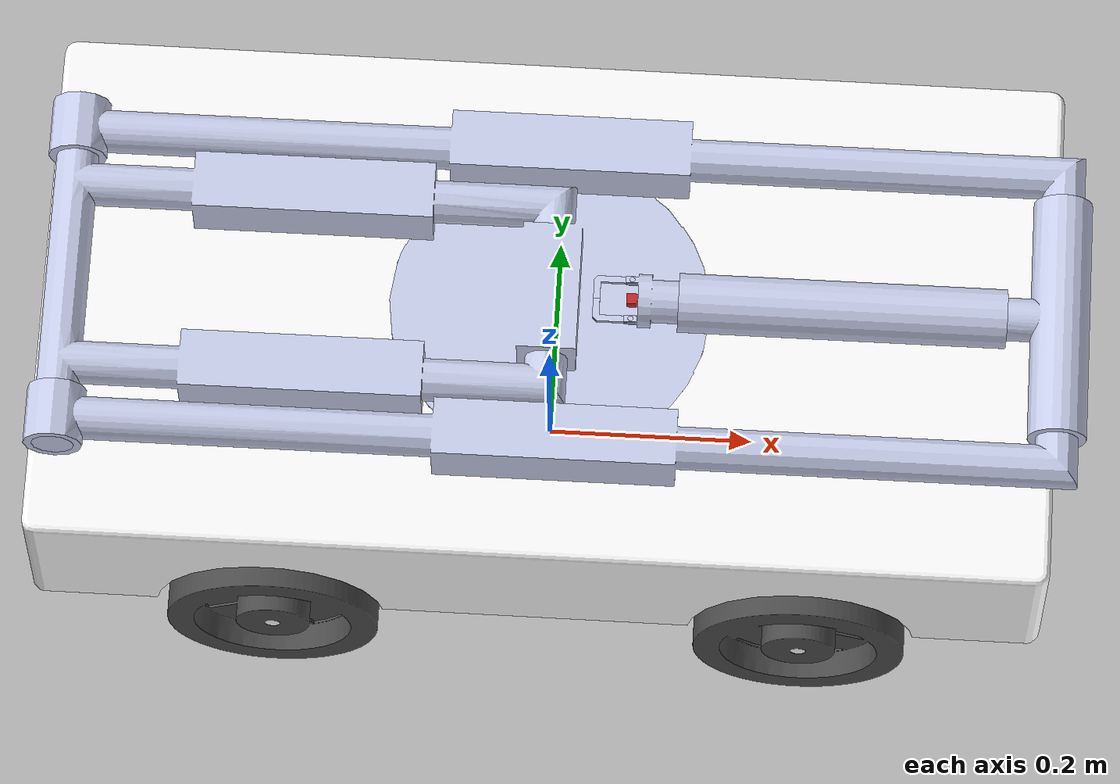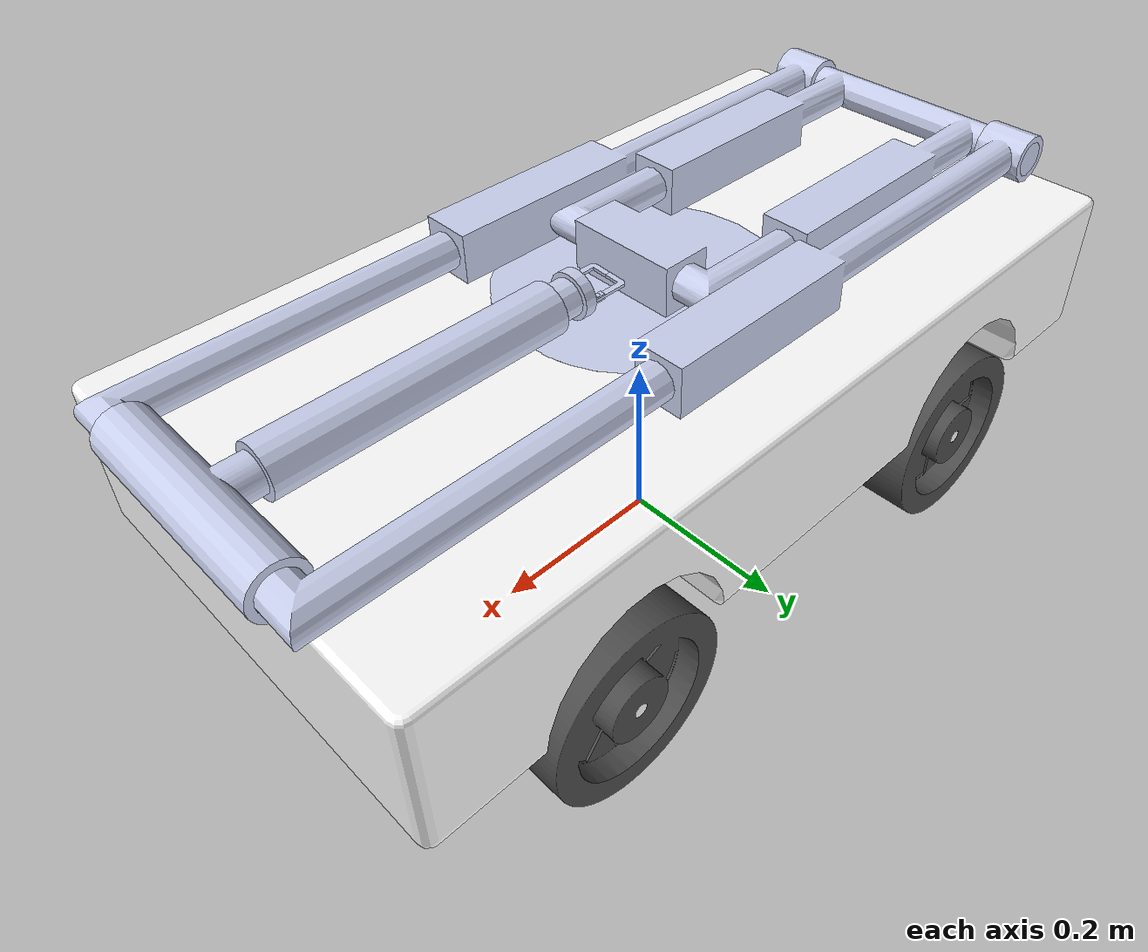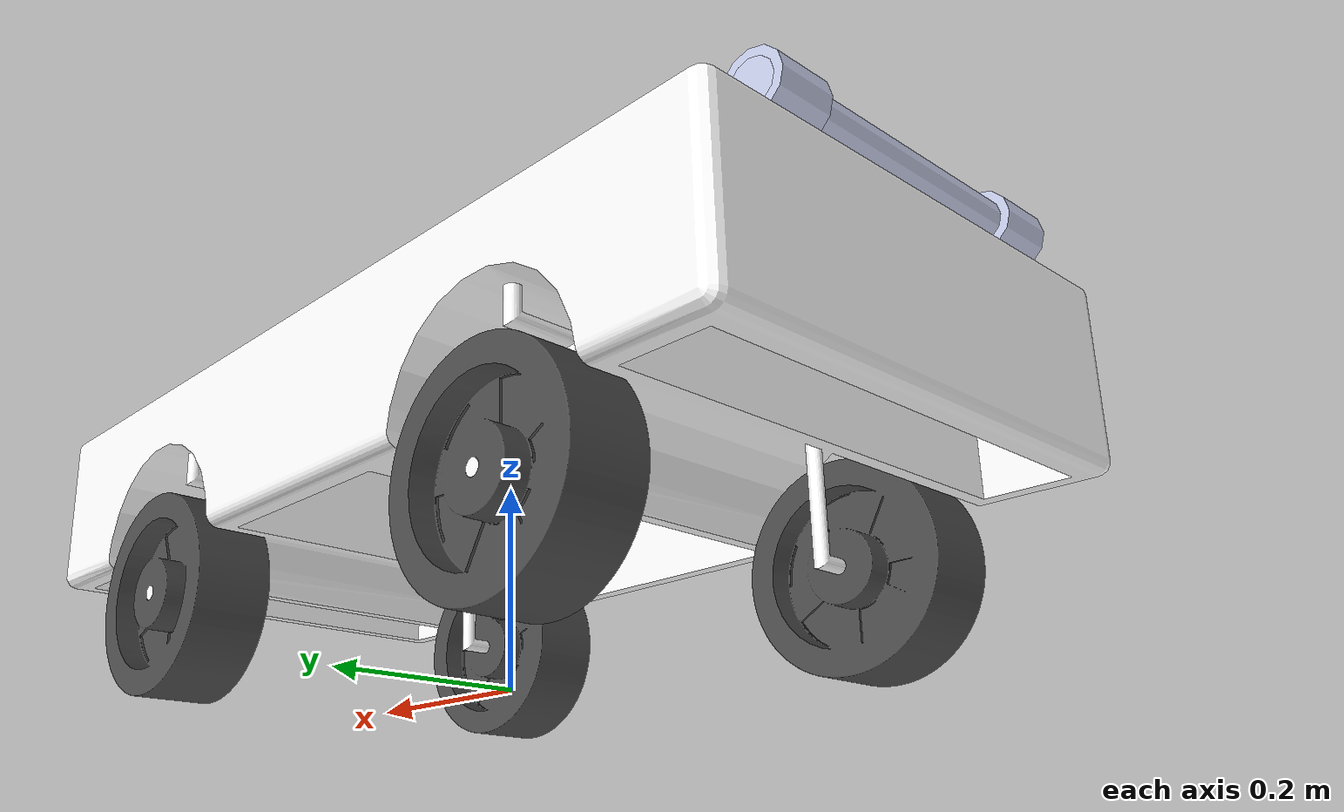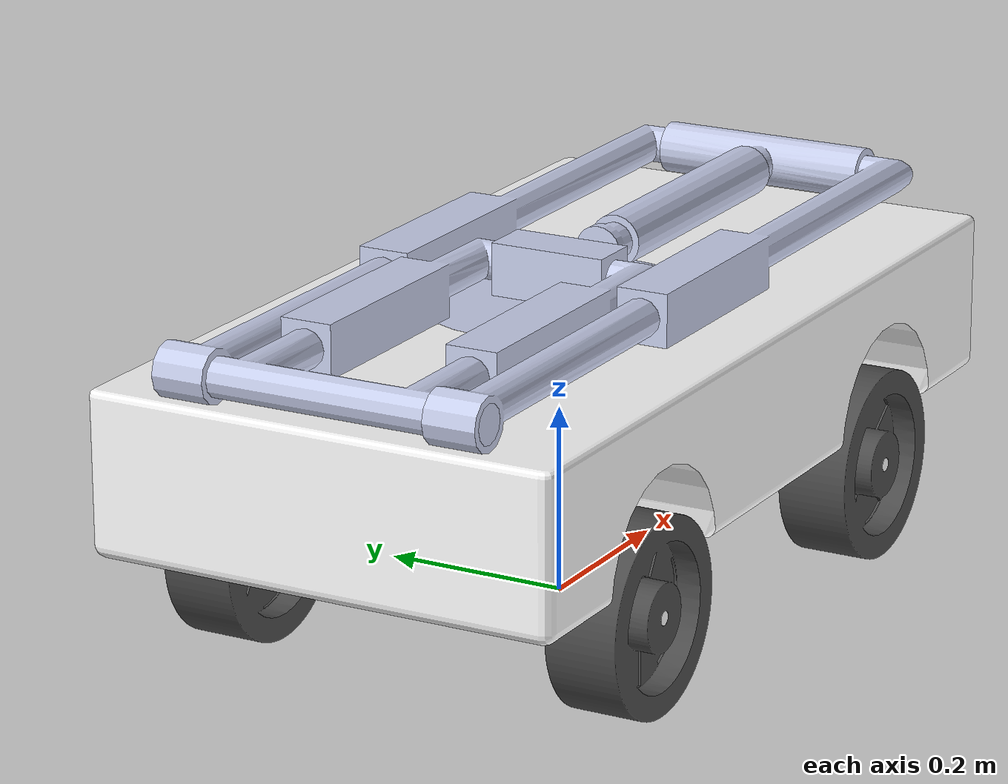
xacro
<?xml version="1.0"?>
<!-- Name your robot here -->
<robot name ="transformer" xmlns:xacro="http://wiki.ros.org/xacro">

<!-- Include your urdf files here -->
	<!-- Include Robot's urdf filepath -->
	<xacro:include filename="$(find transformer)/urdf/transformer.urdf" />
	<xacro:include filename="camera.xacro" />

<!-- Add your gazebo sensors here -->

<!--  Gazebo plugin for control here is already added for you -->
	<gazebo>
		<plugin name="gazebo_ros_control" filename="libgazebo_ros_control.so">
			<robotNamespace>/transformer</robotNamespace>
			<robotSimType>gazebo_ros_control/DefaultRobotHWSim</robotSimType>
			<legacyModeNS>true</legacyModeNS>
		</plugin>
	</gazebo>

</robot>

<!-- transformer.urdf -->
<robot
  name="toycar">
  <link
    name="dummy_link">
  </link>

  <joint
    name="dummy_joint"
    type="fixed">
    <parent
      link="dummy_link" />
    <child
      link="base_link" />
    <origin
      xyz="0 0 0"
      rpy="0 0 0" />
  </joint>

  <link
    name="base_link">
    <inertial>
      <origin
        xyz="-0.042877 1.1748E-08 0.29275"
        rpy="0 0 0" />
      <mass
        value="52.191" />
      <inertia
        ixx="1.4547"
        ixy="-1.4758E-06"
        ixz="0.13713"
        iyy="3.9353"
        iyz="1.4578E-08"
        izz="4.9977" />
    </inertial>
    <visual>
      <origin
        xyz="0 0 0"
        rpy="0 0 0" />
      <geometry>
        <mesh
          filename="package://toycar/meshes/base_link.STL" />
      </geometry>
      <material
        name="">
        <color
          rgba="1 1 1 1" />
      </material>
    </visual>
    <collision>
      <origin
        xyz="0 0 0"
        rpy="0 0 0" />
      <geometry>
        <mesh
          filename="package://toycar/meshes/base_link.STL" />
      </geometry>
    </collision>
  </link>
  <link
    name="FL_axle">
    <inertial>
      <origin
        xyz="-2.1389E-07 -0.033228 -0.10824"
        rpy="0 0 0" />
      <mass
        value="0.061704" />
      <inertia
        ixx="0.00028284"
        ixy="-3.6306E-10"
        ixz="-1.1782E-10"
        iyy="0.0002242"
        iyz="-4.3637E-06"
        izz="6.0365E-05" />
    </inertial>
    <visual>
      <origin
        xyz="0 0 0"
        rpy="0 0 0" />
      <geometry>
        <mesh
          filename="package://toycar/meshes/FL_axle.STL" />
      </geometry>
      <material
        name="">
        <color
          rgba="1 1 1 1" />
      </material>
    </visual>
    <collision>
      <origin
        xyz="0 0 0"
        rpy="0 0 0" />
      <geometry>
        <mesh
          filename="package://toycar/meshes/FL_axle.STL" />
      </geometry>
    </collision>
  </link>
  <joint
    name="FL_axle_chassis"
    type="revolute">
    <origin
      xyz="0.254 0.2159 0.2794"
      rpy="0 0 0" />
    <parent
      link="base_link" />
    <child
      link="FL_axle" />
    <axis
      xyz="0 0 1" />
    <limit
      lower="-0.698"
      upper="0.698"
      effort="30"
      velocity="100" />
  </joint>
  <transmission name="FL_axle_chassis_trans">
    <type>transmission_interface/SimpleTransmission</type>
    <joint name="FL_axle_chassis">
      <hardwareInterface>hardware_interface/EffortJointInterface</hardwareInterface>
    </joint>
    <actuator name="FL_axle_chassis_motor">
      <mechanicalReduction>1</mechanicalReduction>
      <hardwareInterface>hardware_interface/EffortJointInterface</hardwareInterface>
    </actuator>
  </transmission>
  <link
    name="FL_wheel">
    <inertial>
      <origin
        xyz="0 0 -0.0381"
        rpy="0 0 0" />
      <mass
        value="19.669" />
      <inertia
        ixx="0.0066187"
        ixy="-2.2273E-18"
        ixz="-7.5842E-19"
        iyy="0.0066187"
        iyz="-4.0053E-19"
        izz="0.011667" />
    </inertial>
    <visual>
      <origin
        xyz="0 0 0"
        rpy="0 0 0" />
      <geometry>
        <mesh
          filename="package://toycar/meshes/FL_wheel.STL" />
      </geometry>
      <material
        name="">
        <color
          rgba="0.29804 0.29804 0.29804 1" />
      </material>
    </visual>
    <collision>
      <origin
        xyz="0 0 0"
        rpy="0 0 0" />
      <geometry>
        <mesh
          filename="package://toycar/meshes/FL_wheel.STL" />
      </geometry>
    </collision>
  </link>
  <joint
    name="FL_wheel_axle"
    type="continuous">
    <origin
      xyz="0 0.0381 -0.1778"
      rpy="-1.5708 0 0" />
    <parent
      link="FL_axle" />
    <child
      link="FL_wheel" />
    <axis
      xyz="0 0 1" />
  </joint>
  <link
    name="FR_axle">
    <inertial>
      <origin
        xyz="2.1389E-07 0.033228 -0.10824"
        rpy="0 0 0" />
      <mass
        value="0.061704" />
      <inertia
        ixx="0.00028284"
        ixy="-3.6306E-10"
        ixz="1.1782E-10"
        iyy="0.0002242"
        iyz="4.3637E-06"
        izz="6.0365E-05" />
    </inertial>
    <visual>
      <origin
        xyz="0 0 0"
        rpy="0 0 0" />
      <geometry>
        <mesh
          filename="package://toycar/meshes/FR_axle.STL" />
      </geometry>
      <material
        name="">
        <color
          rgba="1 1 1 1" />
      </material>
    </visual>
    <collision>
      <origin
        xyz="0 0 0"
        rpy="0 0 0" />
      <geometry>
        <mesh
          filename="package://toycar/meshes/FR_axle.STL" />
      </geometry>
    </collision>
  </link>
  <joint
    name="FR_axle_chassis"
    type="revolute">
    <origin
      xyz="0.254 -0.2159 0.2794"
      rpy="0 0 0" />
    <parent
      link="base_link" />
    <child
      link="FR_axle" />
    <axis
      xyz="0 0 1" />
    <limit
      lower="-0.698"
      upper="0.698"
      effort="30"
      velocity="100" />
  </joint>
  <transmission name="FR_axle_chassis_trans">
    <type>transmission_interface/SimpleTransmission</type>
    <joint name="FR_axle_chassis">
      <hardwareInterface>hardware_interface/EffortJointInterface</hardwareInterface>
    </joint>
    <actuator name="FR_axle_chassis_motor">
      <mechanicalReduction>1</mechanicalReduction>
      <hardwareInterface>hardware_interface/EffortJointInterface</hardwareInterface>
    </actuator>
  </transmission>
  <link
    name="FR_wheel">
    <inertial>
      <origin
        xyz="0 -1.3878E-17 0.0381"
        rpy="0 0 0" />
      <mass
        value="19.669" />
      <inertia
        ixx="0.0066187"
        ixy="1.0816E-18"
        ixz="-4.9837E-19"
        iyy="0.0066187"
        iyz="-4.0009E-19"
        izz="0.011667" />
    </inertial>
    <visual>
      <origin
        xyz="0 0 0"
        rpy="0 0 0" />
      <geometry>
        <mesh
          filename="package://toycar/meshes/FR_wheel.STL" />
      </geometry>
      <material
        name="">
        <color
          rgba="0.29804 0.29804 0.29804 1" />
      </material>
    </visual>
    <collision>
      <origin
        xyz="0 0 0"
        rpy="0 0 0" />
      <geometry>
        <mesh
          filename="package://toycar/meshes/FR_wheel.STL" />
      </geometry>
    </collision>
  </link>
  <joint
    name="FR_wheel_axle"
    type="continuous">
    <origin
      xyz="0 -0.0381 -0.1778"
      rpy="-1.5708 0 0" />
    <parent
      link="FR_axle" />
    <child
      link="FR_wheel" />
    <axis
      xyz="0 0 1" />
  </joint>
  <link
    name="BR_axle">
    <inertial>
      <origin
        xyz="2.1389E-07 0.033228 -0.10824"
        rpy="0 0 0" />
      <mass
        value="0.061704" />
      <inertia
        ixx="0.00028284"
        ixy="-3.6306E-10"
        ixz="1.1782E-10"
        iyy="0.0002242"
        iyz="4.3637E-06"
        izz="6.0365E-05" />
    </inertial>
    <visual>
      <origin
        xyz="0 0 0"
        rpy="0 0 0" />
      <geometry>
        <mesh
          filename="package://toycar/meshes/BR_axle.STL" />
      </geometry>
      <material
        name="">
        <color
          rgba="1 1 1 1" />
      </material>
    </visual>
    <collision>
      <origin
        xyz="0 0 0"
        rpy="0 0 0" />
      <geometry>
        <mesh
          filename="package://toycar/meshes/BR_axle.STL" />
      </geometry>
    </collision>
  </link>
  <joint
    name="BR_axle_chassis"
    type="fixed">
    <origin
      xyz="-0.254 -0.2159 0.2794"
      rpy="0 0 0" />
    <parent
      link="base_link" />
    <child
      link="BR_axle" />
    <axis
      xyz="0 0 0" />
  </joint>
  <link
    name="BR_wheel">
    <inertial>
      <origin
        xyz="0 -1.3878E-17 0.0381"
        rpy="0 0 0" />
      <mass
        value="19.669" />
      <inertia
        ixx="0.0066187"
        ixy="-4.6602E-19"
        ixz="-3.6188E-20"
        iyy="0.0066187"
        iyz="-2.4546E-20"
        izz="0.011667" />
    </inertial>
    <visual>
      <origin
        xyz="0 0 0"
        rpy="0 0 0" />
      <geometry>
        <mesh
          filename="package://toycar/meshes/BR_wheel.STL" />
      </geometry>
      <material
        name="">
        <color
          rgba="0.29804 0.29804 0.29804 1" />
      </material>
    </visual>
    <collision>
      <origin
        xyz="0 0 0"
        rpy="0 0 0" />
      <geometry>
        <mesh
          filename="package://toycar/meshes/BR_wheel.STL" />
      </geometry>
    </collision>
  </link>
  <joint
    name="BR_wheel_axle"
    type="continuous">
    <origin
      xyz="0 -0.0381 -0.1778"
      rpy="-1.5708 0 0" />
    <parent
      link="BR_axle" />
    <child
      link="BR_wheel" />
    <axis
      xyz="0 0 1" />
  </joint>
  <transmission name="BR_wheel_axle_trans">
    <type>transmission_interface/SimpleTransmission</type>
    <joint name="BR_wheel_axle">
      <hardwareInterface>hardware_interface/VelocityJointInterface</hardwareInterface>
    </joint>
    <actuator name="BR_wheel_axle_motor">
      <mechanicalReduction>1</mechanicalReduction>
    </actuator>
  </transmission>
  <link
    name="BL_axle">
    <inertial>
      <origin
        xyz="-2.1389E-07 -0.033228 -0.10824"
        rpy="0 0 0" />
      <mass
        value="0.061704" />
      <inertia
        ixx="0.00028284"
        ixy="-3.6306E-10"
        ixz="-1.1782E-10"
        iyy="0.0002242"
        iyz="-4.3637E-06"
        izz="6.0365E-05" />
    </inertial>
    <visual>
      <origin
        xyz="0 0 0"
        rpy="0 0 0" />
      <geometry>
        <mesh
          filename="package://toycar/meshes/BL_axle.STL" />
      </geometry>
      <material
        name="">
        <color
          rgba="1 1 1 1" />
      </material>
    </visual>
    <collision>
      <origin
        xyz="0 0 0"
        rpy="0 0 0" />
      <geometry>
        <mesh
          filename="package://toycar/meshes/BL_axle.STL" />
      </geometry>
    </collision>
  </link>
  <joint
    name="BL_axle_chassis"
    type="fixed">
    <origin
      xyz="-0.254 0.2159 0.2794"
      rpy="0 0 0" />
    <parent
      link="base_link" />
    <child
      link="BL_axle" />
    <axis
      xyz="0 0 0" />
  </joint>
  <link
    name="BL_wheel">
    <inertial>
      <origin
        xyz="5.5511E-17 1.3878E-17 -0.0381"
        rpy="0 0 0" />
      <mass
        value="19.669" />
      <inertia
        ixx="0.0066187"
        ixy="4.4054E-19"
        ixz="-1.3271E-18"
        iyy="0.0066187"
        iyz="-6.6236E-19"
        izz="0.011667" />
    </inertial>
    <visual>
      <origin
        xyz="0 0 0"
        rpy="0 0 0" />
      <geometry>
        <mesh
          filename="package://toycar/meshes/BL_wheel.STL" />
      </geometry>
      <material
        name="">
        <color
          rgba="0.29804 0.29804 0.29804 1" />
      </material>
    </visual>
    <collision>
      <origin
        xyz="0 0 0"
        rpy="0 0 0" />
      <geometry>
        <mesh
          filename="package://toycar/meshes/BL_wheel.STL" />
      </geometry>
    </collision>
  </link>
  <joint
    name="BL_wheel_axle"
    type="continuous">
    <origin
      xyz="0 0.0381 -0.1778"
      rpy="-1.5708 0 0" />
    <parent
      link="BL_axle" />
    <child
      link="BL_wheel" />
    <axis
      xyz="0 0 1" />
  </joint>
  <transmission name="BL_wheel_axle_trans">
    <type>transmission_interface/SimpleTransmission</type>
    <joint name="BL_wheel_axle">
      <hardwareInterface>hardware_interface/VelocityJointInterface</hardwareInterface>
    </joint>
    <actuator name="BL_wheel_axle_motor">
      <mechanicalReduction>1</mechanicalReduction>
    </actuator>
  </transmission>
  <link
    name="mlr_link1">
    <inertial>
      <origin
        xyz="-3.4833E-15 -5.1625E-15 0.066013"
        rpy="0 0 0" />
      <mass
        value="0.021881" />
      <inertia
        ixx="0.011816"
        ixy="-1.1858E-20"
        ixz="-2.873E-19"
        iyy="0.011591"
        iyz="-2.3152E-19"
        izz="0.021954" />
    </inertial>
    <visual>
      <origin
        xyz="0 0 0"
        rpy="0 0 0" />
      <geometry>
        <mesh
          filename="package://transformer/meshes/mlr_link1.STL" />
      </geometry>
      <material
        name="">
        <color
          rgba="0.79216 0.81961 0.93333 1" />
      </material>
    </visual>
    <collision>
      <origin
        xyz="0 0 0"
        rpy="0 0 0" />
      <geometry>
        <mesh
          filename="package://transformer/meshes/mlr_link1.STL" />
      </geometry>
    </collision>
  </link>
  <joint
    name="link1_chassis"
    type="revolute">
    <origin
      xyz="0 0 0.24252"
      rpy="0 0 0.0025505" />
    <parent
      link="base_link" />
    <child
      link="mlr_link1" />
    <axis
      xyz="0 0 -1" />
    <limit
      lower="0"
      upper="6.283"
      effort="30"
      velocity="100" />
  </joint>
  <transmission name="link1_chassis_trans">
    <type>transmission_interface/SimpleTransmission</type>
    <joint name="link1_chassis">
      <hardwareInterface>hardware_interface/EffortJointInterface</hardwareInterface>
    </joint>
    <actuator name="link1_chassis_motor">
      <mechanicalReduction>1</mechanicalReduction>
      <hardwareInterface>hardware_interface/EffortJointInterface</hardwareInterface>
    </actuator>
  </transmission>
  <link
    name="mlr_link2">
    <inertial>
      <origin
        xyz="0.24339 -9.8435E-08 2.7091E-06"
        rpy="0 0 0" />
      <mass
        value="0.226679" />
      <inertia
        ixx="0.022841"
        ixy="8.6807E-08"
        ixz="1.271E-06"
        iyy="0.080308"
        iyz="2.3327E-08"
        izz="0.058468" />
    </inertial>
    <visual>
      <origin
        xyz="0 0 0"
        rpy="0 0 0" />
      <geometry>
        <mesh
          filename="package://transformer/meshes/mlr_link2.STL" />
      </geometry>
      <material
        name="">
        <color
          rgba="0.79216 0.81961 0.93333 1" />
      </material>
    </visual>
    <collision>
      <origin
        xyz="0 0 0"
        rpy="0 0 0" />
      <geometry>
        <mesh
          filename="package://transformer/meshes/mlr_link2.STL" />
      </geometry>
    </collision>
  </link>
  <joint
    name="link2_link1"
    type="revolute">
    <origin
      xyz="0 0 0.10414"
      rpy="1.5708 0 3.1416" />
    <parent
      link="mlr_link1" />
    <child
      link="mlr_link2" />
    <axis
      xyz="0 0 1" />
    <limit
      lower="0"
      upper="3.14"
      effort="300"
      velocity="100" />
  </joint>
  <transmission name="link2_link1_trans">
    <type>transmission_interface/SimpleTransmission</type>
    <joint name="link2_link1">
      <hardwareInterface>hardware_interface/EffortJointInterface</hardwareInterface>
    </joint>
    <actuator name="link2_link1_motor">
      <mechanicalReduction>1</mechanicalReduction>
      <hardwareInterface>hardware_interface/EffortJointInterface</hardwareInterface>
    </actuator>
  </transmission>
  <link
    name="mlr_link3">
    <inertial>
      <origin
        xyz="0.50997 0.0031101 -7.5244E-06"
        rpy="0 0 0" />
      <mass
        value="0.03717" />
      <inertia
        ixx="0.076483"
        ixy="8.4905E-08"
        ixz="9.2587E-06"
        iyy="0.35221"
        iyz="8.051E-09"
        izz="0.27699" />
    </inertial>
    <visual>
      <origin
        xyz="0 0 0"
        rpy="0 0 0" />
      <geometry>
        <mesh
          filename="package://transformer/meshes/mlr_link3.STL" />
      </geometry>
      <material
        name="">
        <color
          rgba="0.79216 0.81961 0.93333 1" />
      </material>
    </visual>
    <collision>
      <origin
        xyz="0 0 0"
        rpy="0 0 0" />
      <geometry>
        <mesh
          filename="package://transformer/meshes/mlr_link3.STL" />
      </geometry>
    </collision>
  </link>
  <joint
    name="link3_link2"
    type="revolute">
    <origin
      xyz="0.45688 -0.0031098 0"
      rpy="-3.1416 0 3.1416" />
    <parent
      link="mlr_link2" />
    <child
      link="mlr_link3" />
    <axis
      xyz="0 0 1" />
    <limit
      lower="0"
      upper="6.283"
      effort="300"
      velocity="100" />
  </joint>
  <transmission name="link3_link2_trans">
    <type>transmission_interface/SimpleTransmission</type>
    <joint name="link3_link2">
      <hardwareInterface>hardware_interface/EffortJointInterface</hardwareInterface>
    </joint>
    <actuator name="link3_link2_motor">
      <mechanicalReduction>1</mechanicalReduction>
      <hardwareInterface>hardware_interface/EffortJointInterface</hardwareInterface>
    </actuator>
  </transmission>
  <link
    name="mlr_link4">
    <inertial>
      <origin
        xyz="0.016727 6.741E-08 1.784E-08"
        rpy="0 0 0" />
      <mass
        value="0.037398" />
      <inertia
        ixx="0.0014131"
        ixy="-5.5962E-10"
        ixz="1.0584E-10"
        iyy="0.0017439"
        iyz="1.0599E-09"
        izz="0.00051617" />
    </inertial>
    <visual>
      <origin
        xyz="0 0 0"
        rpy="0 0 0" />
      <geometry>
        <mesh
          filename="package://transformer/meshes/mlr_link4.STL" />
      </geometry>
      <material
        name="">
        <color
          rgba="0.79216 0.81961 0.93333 1" />
      </material>
    </visual>
    <collision>
      <origin
        xyz="0 0 0"
        rpy="0 0 0" />
      <geometry>
        <mesh
          filename="package://transformer/meshes/mlr_link4.STL" />
      </geometry>
    </collision>
  </link>
  <joint
    name="link4_link3"
    type="revolute">
    <origin
      xyz="0.93948 0.0031098 0"
      rpy="-3.1416 0 3.1416" />
    <parent
      link="mlr_link3" />
    <child
      link="mlr_link4" />
    <axis
      xyz="0 0 1" />
    <limit
      lower="0"
      upper="6.283"
      effort="100"
      velocity="100" />
  </joint>
  <transmission name="link4_link3_trans">
    <type>transmission_interface/SimpleTransmission</type>
    <joint name="link4_link3">
      <hardwareInterface>hardware_interface/EffortJointInterface</hardwareInterface>
    </joint>
    <actuator name="link4_link3_motor">
      <mechanicalReduction>1</mechanicalReduction>
      <hardwareInterface>hardware_interface/EffortJointInterface</hardwareInterface>
    </actuator>
  </transmission>
  <link
    name="mlr_link5">
    <inertial>
      <origin
        xyz="-1.0445E-05 -0.00012914 0.2039"
        rpy="0 0 0" />
      <mass
        value="0.036459" />
      <inertia
        ixx="0.0030391"
        ixy="-2.7105E-20"
        ixz="-2.5269E-19"
        iyy="0.0030391"
        iyz="3.7635E-19"
        izz="0.00021501" />
    </inertial>
    <visual>
      <origin
        xyz="0 0 0"
        rpy="0 0 0" />
      <geometry>
        <mesh
          filename="package://transformer/meshes/mlr_link5.STL" />
      </geometry>
      <material
        name="">
        <color
          rgba="0.79216 0.81961 0.93333 1" />
      </material>
    </visual>
    <collision>
      <origin
        xyz="0 0 0"
        rpy="0 0 0" />
      <geometry>
        <mesh
          filename="package://transformer/meshes/mlr_link5.STL" />
      </geometry>
    </collision>
  </link>
  <joint
    name="link5_link4"
    type="revolute">
    <origin
      xyz="0 0 0.00012957"
      rpy="1.5708 -0.080704 1.5708" />
    <parent
      link="mlr_link4" />
    <child
      link="mlr_link5" />
    <axis
      xyz="0 0 1" />
    <limit
      lower="0"
      upper="6.283"
      effort="30"
      velocity="100" />
  </joint>
  <transmission name="link5_link4_trans">
    <type>transmission_interface/SimpleTransmission</type>
    <joint name="link5_link4">
      <hardwareInterface>hardware_interface/EffortJointInterface</hardwareInterface>
    </joint>
    <actuator name="link5_link4_motor">
      <mechanicalReduction>1</mechanicalReduction>
      <hardwareInterface>hardware_interface/EffortJointInterface</hardwareInterface>
    </actuator>
  </transmission>
  <link
    name="mlr_link6">
    <inertial>
      <origin
        xyz="2.2204E-16 2.9143E-16 0.15461"
        rpy="0 0 0" />
      <mass
        value="0.038855" />
      <inertia
        ixx="0.002921"
        ixy="1.2038E-08"
        ixz="6.3631E-19"
        iyy="0.0029208"
        iyz="-3.5832E-19"
        izz="8.329E-05" />
    </inertial>
    <visual>
      <origin
        xyz="0 0 0"
        rpy="0 0 0" />
      <geometry>
        <mesh
          filename="package://transformer/meshes/mlr_link6.STL" />
      </geometry>
      <material
        name="">
        <color
          rgba="0.79216 0.81961 0.93333 1" />
      </material>
    </visual>
    <collision>
      <origin
        xyz="0 0 0"
        rpy="0 0 0" />
      <geometry>
        <mesh
          filename="package://transformer/meshes/mlr_link6.STL" />
      </geometry>
    </collision>
  </link>
  <joint
    name="link6_link5"
    type="prismatic">
    <origin
      xyz="-1.0445E-05 -0.00012914 0.1016"
      rpy="0 0 3.0214" />
    <parent
      link="mlr_link5" />
    <child
      link="mlr_link6" />
    <axis
      xyz="0 0 1" />
    <limit
      lower="0"
      upper="0.254"
      effort="30"
      velocity="100" />
  </joint>
  <transmission name="link6_link5_trans">
    <type>transmission_interface/SimpleTransmission</type>
    <joint name="link6_link5">
      <hardwareInterface>hardware_interface/EffortJointInterface</hardwareInterface>
    </joint>
    <actuator name="link6_link5_motor">
      <mechanicalReduction>1</mechanicalReduction>
      <hardwareInterface>hardware_interface/EffortJointInterface</hardwareInterface>
    </actuator>
  </transmission>
  <link
    name="finger1">
    <inertial>
      <origin
        xyz="0.0032305 -0.019321 0.0002415"
        rpy="0 0 0" />
      <mass
        value="0.0012184" />
      <inertia
        ixx="2.1571E-07"
        ixy="5.6309E-08"
        ixz="-1.6294E-09"
        iyy="4.6481E-08"
        iyz="2.0983E-09"
        izz="2.5937E-07" />
    </inertial>
    <visual>
      <origin
        xyz="0 0 0"
        rpy="0 0 0" />
      <geometry>
        <mesh
          filename="package://transformer/meshes/finger1.STL" />
      </geometry>
      <material
        name="">
        <color
          rgba="0.79216 0.81961 0.93333 1" />
      </material>
    </visual>
    <collision>
      <origin
        xyz="0 0 0"
        rpy="0 0 0" />
      <geometry>
        <mesh
          filename="package://transformer/meshes/finger1.STL" />
      </geometry>
    </collision>
  </link>
  <joint
    name="finger1_link6"
    type="revolute">
    <origin
      xyz="-0.0016676 0.020119 0.30352"
      rpy="-1.5708 0 -1.5313" />
    <parent
      link="mlr_link6" />
    <child
      link="finger1" />
    <axis
      xyz="0 0 -1" />
    <limit
      lower="0"
      upper="1.57"
      effort="30"
      velocity="100" />
  </joint>
  <transmission name="finger1_link6_trans">
    <type>transmission_interface/SimpleTransmission</type>
    <joint name="finger1_link6">
      <hardwareInterface>hardware_interface/EffortJointInterface</hardwareInterface>
    </joint>
    <actuator name="finger1_link6_motor">
      <mechanicalReduction>1</mechanicalReduction>
      <hardwareInterface>hardware_interface/EffortJointInterface</hardwareInterface>
    </actuator>
  </transmission>
  <link
    name="finger2">
    <inertial>
      <origin
        xyz="0.003506 -0.019305 0.00011543"
        rpy="0 0 0" />
      <mass
        value="0.0012184" />
      <inertia
        ixx="2.1565E-07"
        ixy="5.6348E-08"
        ixz="1.4889E-23"
        iyy="4.6481E-08"
        iyz="-5.8525E-23"
        izz="2.5943E-07" />
    </inertial>
    <visual>
      <origin
        xyz="0 0 0"
        rpy="0 0 0" />
      <geometry>
        <mesh
          filename="package://transformer/meshes/finger2.STL" />
      </geometry>
      <material
        name="">
        <color
          rgba="0.79216 0.81961 0.93333 1" />
      </material>
    </visual>
    <collision>
      <origin
        xyz="0 0 0"
        rpy="0 0 0" />
      <geometry>
        <mesh
          filename="package://transformer/meshes/finger2.STL" />
      </geometry>
    </collision>
  </link>
  <joint
    name="finger2_link6"
    type="revolute">
    <origin
      xyz="0.0016826 -0.020388 0.30354"
      rpy="-1.5708 0 1.6475" />
    <parent
      link="mlr_link6" />
    <child
      link="finger2" />
    <axis
      xyz="0 0 -1" />
    <limit
      lower="0"
      upper="1.57"
      effort="30"
      velocity="100" />
  </joint>
  <transmission name="finger2_link6_trans">
    <type>transmission_interface/SimpleTransmission</type>
    <joint name="finger2_link6">
      <hardwareInterface>hardware_interface/EffortJointInterface</hardwareInterface>
    </joint>
    <actuator name="finger2_link6_motor">
      <mechanicalReduction>1</mechanicalReduction>
      <hardwareInterface>hardware_interface/EffortJointInterface</hardwareInterface>
    </actuator>
  </transmission>
</robot>

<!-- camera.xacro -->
<robot xmlns:xacro="http://www.ros.org/wiki/xacro" >

    <joint name="camera_joint" type="fixed">
        <parent link="mlr_link6"/>
        <child link="camera_link"/>
        <origin xyz="0 0 0.303" rpy="1.57 -1.57 1.57"/>
    </joint>

    <link name="camera_link">
        <visual>
            <geometry>
                <box size="0.010 0.01 0.01"/>
            </geometry>
            <material name="red"/>
        </visual>
    </link>

    <joint name="camera_optical_joint" type="fixed">
        <parent link="camera_link"/>
        <child link="camera_link_optical"/>
        <origin xyz="0 0 0" rpy="${-pi/2} 0 ${-pi/2}"/>
    </joint>

    <link name="camera_link_optical"></link>

    <gazebo reference="camera_link">
        <material>Gazebo/Red</material>

        <sensor name="camera" type="camera">
            <pose> 0 0 0 0 0 0 </pose>
            <visualize>true</visualize>
            <update_rate>10</update_rate>
            <camera>
                <horizontal_fov>1.089</horizontal_fov>
                <image>
                    <format>R8G8B8</format>
                    <width>640</width>
                    <height>480</height>
                </image>
                <clip>
                    <near>0.05</near>
                    <far>8.0</far>
                </clip>
            </camera>
            <plugin name="camera_controller" filename="libgazebo_ros_camera.so">
                <frame_name>camera_link_optical</frame_name>
            </plugin>
        </sensor>
    </gazebo>

</robot>
